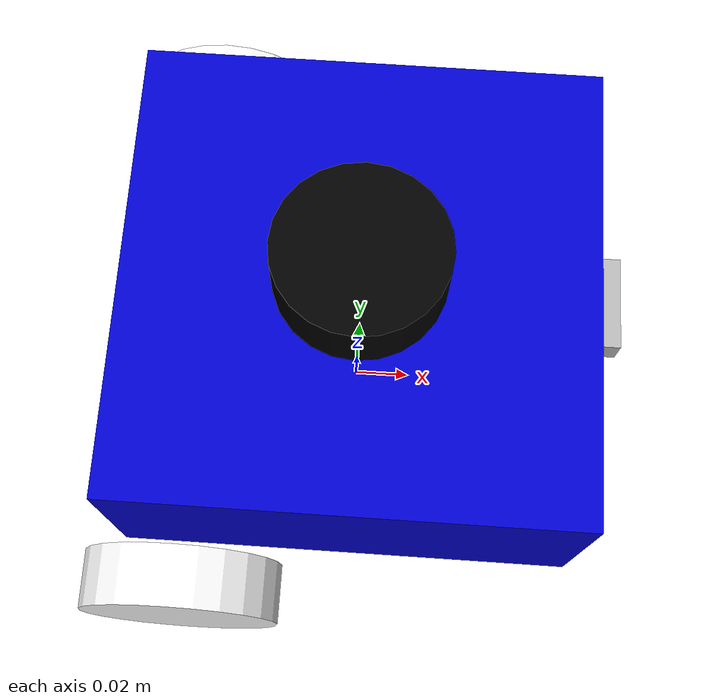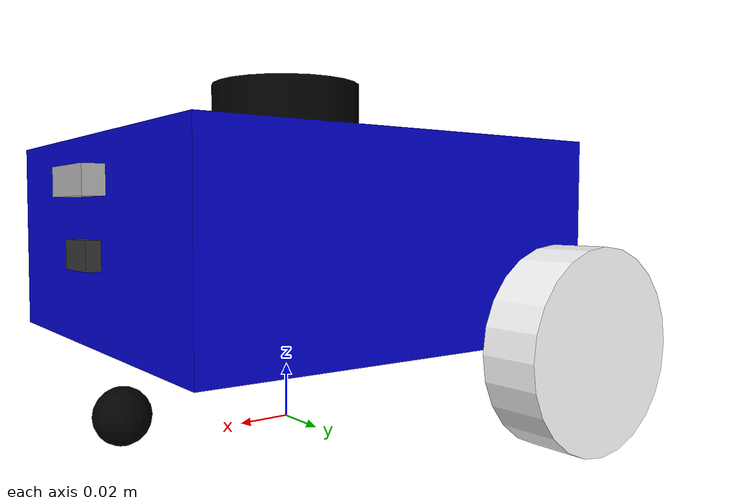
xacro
<?xml version="1.0"?>
<robot xmlns:xacro="http://www.ros.org/wiki/xacro" name="amr_robot">

  <xacro:include filename="$(find amr_robot)/urdf/properties.xacro"/>
  <xacro:include filename="$(find amr_robot)/urdf/base.xacro"/>
  <xacro:include filename="$(find amr_robot)/urdf/sensors.xacro"/>
  <xacro:include filename="$(find amr_robot)/urdf/wheels.xacro"/>

</robot>

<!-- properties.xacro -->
<robot xmlns:xacro="http://www.ros.org/wiki/xacro" >

  <xacro:property name="robot_name" value="amr_robot" />

    <!-- Chassis Properties-->
  <xacro:property name="chassis_length" value="0.152"/>
  <xacro:property name="chassis_width" value="0.152"/>
  <xacro:property name="chassis_height" value="0.07"/>
  <xacro:property name="chassis_mass" value="1.0"/>

  <xacro:property name="base_z_offset"  value= "0.034" />

     <!-- Wheel Properties-->
  <xacro:property name="wheel_radius" value="0.034"/>
  <xacro:property name="wheel_thickness" value="0.02"/>
  <xacro:property name="wheel_mass" value="0.1"/>

  <xacro:property name="wheel_friction" value="1.0"/>
  <xacro:property name="wheel_damping" value="0.1"/>

     <!-- Wheel seperation properties-->
  <xacro:property name="wheel_y_offset" value="0.092"/>
  <xacro:property name="wheel_x_offset" value="-0.055"/>
  <xacro:property name="wheel_z_offset" value="0.0"/> <!-- from the floor to the center of the wheel-->

     <!-- Caster wheel Properties-->
  <xacro:property name="caster_radius" value="0.01"/>
  <xacro:property name="caster_mass" value="0.05"/>
  <xacro:property name="caster_x" value="0.066"/>
  <xacro:property name="caster_y" value="0.0"/>
  <xacro:property name="caster_z" value="-0.024"/>

     <!-- SENSOR Positions-->
      <!-- Lidar - RPLidar C1-->
  <xacro:property name="lidar_x" value="0.0"/>
  <xacro:property name="lidar_y" value="0.0"/>
  <xacro:property name="lidar_z" value="0.072"/>
  <xacro:property name="lidar_frame" value="laser_frame"/>

      <!-- IMU - BN0085-->
  <xacro:property name="imu_x" value="0.0"/>
  <xacro:property name="imu_y" value="0.0"/>
  <xacro:property name="imu_z" value="0.026"/>

      <!-- IR -->
  <xacro:property name="ir_x" value="0.076"/>
  <xacro:property name="ir_y" value="0.0"/>
  <xacro:property name="ir_z" value="0.026"/>

    <!-- Camera - RPi Camera Module 3-->
  <xacro:property name="camera_x" value="0.076"/>
  <xacro:property name="camera_y" value="0.0"/>
  <xacro:property name="camera_z" value="0.050"/>

    <!-- INERTIA MACROS -->
     <!-- Chassis inertia-->
  <xacro:macro name="box_inertia" params="m l w h">
  <inertial>
    <origin xyz="0.0 0.0 0.0" rpy="0.0 0.0 0.0"/>
    <mass value="${m}" />
    <inertia
      ixx="${(m/12) * (w*w + h*h)}"
      ixy="0.0" ixz="0.0"
      iyy="${(m/12) * (l*l + h*h)}"
      iyz="0.0"
      izz="${(m/12) * (l*l + w*w)}" />
  </inertial>
</xacro:macro>

     <!--Wheels inertia -->
  <xacro:macro name="cylinder_inertia" params="m r h">
  <inertial>
    <origin xyz="0.0 0.0 0.0" rpy="0.0 0.0 0.0"/>
    <mass value="${m}" />
    <inertia
      ixx="${(m/12) * (3*r*r + h*h)}"
      ixy="0.0" ixz="0.0"
      iyy="${(m/12) * (3*r*r + h*h)}"
      iyz="0.0"
      izz="${(m/2) * (r*r)}" />
  </inertial>
</xacro:macro>

     <!-- caster wheels -->
  <xacro:macro name="sphere_inertia" params="m r">
  <inertial>
    <origin xyz="0.0 0.0 0.0" rpy="0.0 0.0 0.0"/>
    <mass value="${m}" />
    <inertia
      ixx="${(2.0/5.0) * m * r * r}"
      ixy="0.0" ixz="0.0"
      iyy="${(2.0/5.0) * m * r * r}"
      iyz="0.0"
      izz="${(2.0/5.0) * m * r * r}" />
  </inertial>
</xacro:macro>

</robot>

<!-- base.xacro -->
<robot xmlns:xacro="http://www.ros.org/wiki/xacro">

 <!-- MATERIALS -->
 <material name="black">
 <color rgba="0.0 0.0 0.0 1.0" />
 </material>

 <material name="dark_grey">
 <color rgba="0.2 0.2 0.2 1.0" />
 </material>

 <material name="light_grey">
 <color rgba="0.7 0.7 0.7 1.0" />
 </material>

 <material name="white">
 <color rgba="1.0 1.0 1.0 1.0" />
 </material>

 <material name="orange">
 <color rgba="1.0 0.4 0.0 1.0" />
 </material>

 <material name="blue">
 <color rgba="0.0 0.0 0.8 1.0"/>
 </material>

 <!-- BASE FOOTPRINT -->
 <link name="base_footprint" />

 <joint name="base_footprint_joint" type="fixed">
 <parent link="base_footprint" />
 <child link="base_link" />
 <!-- base_link is wheel_radius above the ground -->
 <origin xyz="0.0 0.0 ${base_z_offset}" rpy="0.0 0.0 0.0" />
 </joint>

 <!-- BASE LINK-->
 <link name="base_link" />

 <!-- CHASSIS -->
 <joint name="chassis_joint" type="fixed">
 <parent link="base_link" />
 <child link="chassis" />
 <!-- chassis centre is at half its height above base_link -->
 <origin xyz="0.0 0.0 ${chassis_height/2}" rpy="0.0 0.0 0.0" />
 </joint>

 <link name="chassis">
 <visual>
 <origin xyz="0.0 0.0 0.0" rpy="0.0 0.0 0.0" />
 <geometry>
 <box size="${chassis_length} ${chassis_width} ${chassis_height}" />
 </geometry>
 <material name="blue" />
 </visual>
 <collision>
 <origin xyz="0.0 0.0 0.0" rpy="0.0 0.0 0.0" />
 <geometry>
 <box size="${chassis_length} ${chassis_width} ${chassis_height}" />
 </geometry>
 </collision>
 <xacro:box_inertia
 m="${chassis_mass}"
 l="${chassis_length}"
 w="${chassis_width}"
 h="${chassis_height}" />
 </link>

 <!-- CASTER WHEEL -->
 <joint name="caster_wheel_joint" type="fixed">
 <parent link="base_link" />
 <child link="caster_wheel" />
 <origin
 xyz="${caster_x} ${caster_y} ${caster_z}"
 rpy="0.0 0.0 0.0" />
 </joint>

 <link name="caster_wheel">
 <visual>
 <origin xyz="0.0 0.0 0.0" rpy="0.0 0.0 0.0" />
 <geometry>
 <sphere radius="${caster_radius}" />
 </geometry>
 <material name="black" />
 </visual>
 <collision>
 <origin xyz="0.0 0.0 0.0" rpy="0.0 0.0 0.0" />
 <geometry>
 <sphere radius="${caster_radius}" />
 </geometry>
 </collision>
 <xacro:sphere_inertia
 m="${caster_mass}"
 r="${caster_radius}" />
 </link>

 <!-- Caster wheel contact properties for Gazebo
 mu = 0 means zero friction, allows free sliding in simulation -->
 <gazebo reference="caster_wheel">
 <mu1 value="0.01" />
 <mu2 value="0.01" />
 </gazebo>

 </robot>

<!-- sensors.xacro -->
<robot xmlns:xacro="http://www.ros.org/wiki/xacro">

  <!-- SENSORS.XACRO -->

  <!-- LIDAR — RPLidar C1 -->
  <joint name="laser_joint" type="fixed">
    <parent link="base_link" />
    <child  link="laser_frame" />
    <origin
      xyz="${lidar_x} ${lidar_y} ${lidar_z}"
      rpy="0.0 0.0 0.0" />
  </joint>

  <link name="laser_frame">
    <visual>
      <origin xyz="0.0 0.0 0.0" rpy="0.0 0.0 0.0" />
      <geometry>
        <cylinder radius="0.028" length="0.0413" />
      </geometry>
      <material name="black" />
    </visual>
    <collision>
      <origin xyz="0.0 0.0 0.0" rpy="0.0 0.0 0.0" />
      <geometry>
        <cylinder radius="0.028" length="0.0413" />
      </geometry>
    </collision>
    <inertial>
      <origin xyz="0.0 0.0 0.0" rpy="0.0 0.0 0.0" />
      <mass value="0.11" />
      <inertia
        ixx="3.72e-05"  ixy="0.0"  ixz="0.0"
        iyy="3.72e-05"  iyz="0.0"
        izz="4.31e-05"/>
    </inertial>
  </link>

  <!-- IMU — BNO085 -->
  <joint name="imu_joint" type="fixed">
    <parent link="base_link" />
    <child  link="imu_link" />
    <origin
      xyz="${imu_x} ${imu_y} ${imu_z}"
      rpy="0.0 0.0 0.0" />
  </joint>

  <link name="imu_link">
    <visual>
      <origin xyz="0.0 0.0 0.0025" rpy="0.0 0.0 0.0" />
      <geometry>
        <box size="0.02 0.02 0.005" />
      </geometry>
      <material name="orange" />
    </visual>
    <collision>
      <origin xyz="0.0 0.0 0.0025" rpy="0.0 0.0 0.0" />
      <geometry>
        <box size="0.02 0.02 0.005" />
      </geometry>
    </collision>
    <inertial>
      <origin xyz="0.0 0.0 0.0" rpy="0.0 0.0 0.0" />
      <mass value="0.003" />
      <inertia
        ixx="1.06e-07"  ixy="0.0"  ixz="0.0"
        iyy="1.06e-07"  iyz="0.0"
        izz="2.00e-07" />
    </inertial>
  </link>

  <!-- IR PROXIMITY SENSOR -->
  <joint name="ir_joint" type="fixed">
    <parent link="base_link" />
    <child  link="ir_link" />
    <origin
      xyz="${ir_x} ${ir_y} ${ir_z}"
      rpy="0.0 0.0 0.0" />
  </joint>

  <link name="ir_link">
    <visual>
      <origin xyz="0.0 0.0 0.005" rpy="0.0 0.0 0.0" />
      <geometry>
        <box size="0.01 0.02 0.01" />
      </geometry>
      <material name="dark_grey" />
    </visual>
    <collision>
      <origin xyz="0.0 0.0 0.005" rpy="0.0 0.0 0.0" />
      <geometry>
        <box size="0.01 0.02 0.01" />
      </geometry>
    </collision>
    <inertial>
      <origin xyz="0.0 0.0 0.005" rpy="0.0 0.0 0.0" />
      <mass value="0.005" />
      <inertia
        ixx="2.08e-07"  ixy="0.0"  ixz="0.0"
        iyy="8.33e-08"  iyz="0.0"
        izz="2.08e-07" />
    </inertial>
  </link>

  <!-- CAMERA — RPi Camera Module 3 -->
  <joint name="camera_joint" type="fixed">
    <parent link="base_link" />
    <child  link="camera_link" />
    <origin
      xyz="${camera_x} ${camera_y} ${camera_z}"
      rpy="0.0 0.0 0.0" />
  </joint>

  <link name="camera_link">
    <visual>
      <origin xyz="0.0 0.0 0.005" rpy="0.0 0.0 0.0" />
      <geometry>
        <box size="0.015 0.030 0.010" />
      </geometry>
      <material name="light_grey" />
    </visual>
    <collision>
      <origin xyz="0.0 0.0 0.005" rpy="0.0 0.0 0.0" />
      <geometry>
        <box size="0.015 0.030 0.010" />
      </geometry>
    </collision>
    <inertial>
      <origin xyz="0.0 0.0 0.005" rpy="0.0 0.0 0.0" />
      <mass value="0.012" />
      <inertia
        ixx="1.00e-06"  ixy="0.0"  ixz="0.0"
        iyy="3.25e-07"  iyz="0.0"
        izz="1.13e-06" />
    </inertial>
  </link>

  <joint name="camera_optical_joint" type="fixed">
    <parent link="camera_link" />
    <child  link="camera_optical_link" />
    <origin xyz="0.0 0.0 0.0" rpy="${-pi/2} 0.0 ${-pi/2}" />
  </joint>

  <link name="camera_optical_link" />

</robot>

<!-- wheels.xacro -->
<robot xmlns:xacro="http://www.ros.org/wiki/xacro">

  <!-- DRIVE WHEEL MACRO  -->
  <xacro:macro name="drive_wheel" params="prefix y_reflect axis_reflect">

    <joint name="${prefix}_wheel_joint" type="continuous">
      <parent link="base_link" />
      <child link="${prefix}_wheel" />

      <origin
        xyz="${wheel_x_offset} ${y_reflect * wheel_y_offset} 0.0"
        rpy="${-pi/2} 0.0 0.0" />

      <axis xyz="0 0 ${axis_reflect}" />   <!-- rolling direction -->

      <dynamics
        friction="${wheel_friction}"
        damping="${wheel_damping}" />
    </joint>

    <link name="${prefix}_wheel">
      <visual>
        <origin xyz="0 0 0" rpy="0 0 0" />
        <geometry>
          <cylinder radius="${wheel_radius}" length="${wheel_thickness}" />
        </geometry>
        <material name="white" />
      </visual>

      <collision>
        <origin xyz="0 0 0" rpy="0 0 0" />
        <geometry>
          <cylinder radius="${wheel_radius}" length="${wheel_thickness}" />
        </geometry>
      </collision>

      <!-- Correct cylinder inertia after -pi/2 rotation -->
      <xacro:cylinder_inertia
        m="${wheel_mass}"
        r="${wheel_radius}"
        h="${wheel_thickness}" />
    </link>

    <!-- Gazebo contact -->
    <gazebo reference="${prefix}_wheel">
      <mu1 value="${wheel_friction}" />
      <mu2 value="${wheel_friction}" />
      <kp value="10000000.0" />
      <kd value="1.0" />
    </gazebo>

  </xacro:macro>

  <!-- Instantiate Wheels -->
  <xacro:drive_wheel prefix="left"  y_reflect="1" axis_reflect="-1"/>
  <xacro:drive_wheel prefix="right" y_reflect="-1" axis_reflect="-1" />

</robot>
